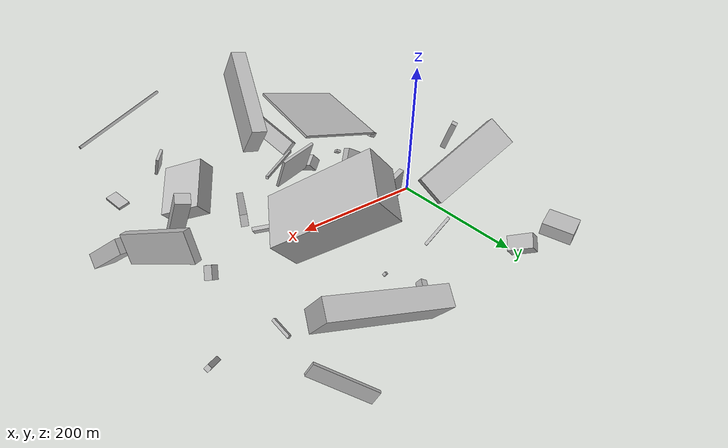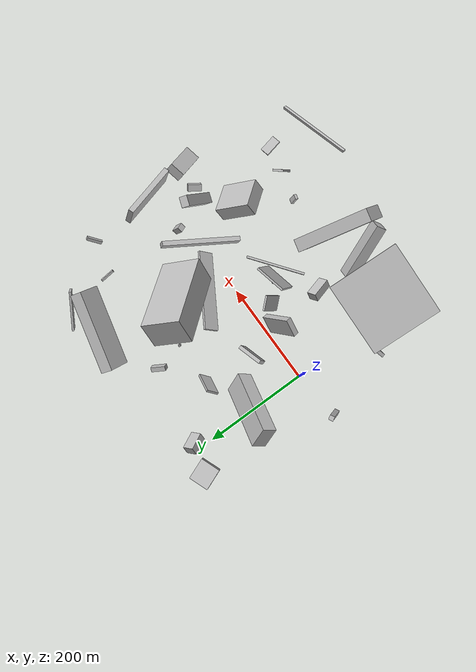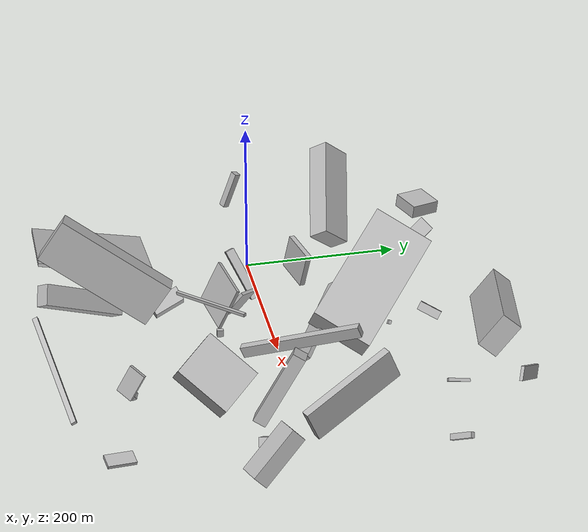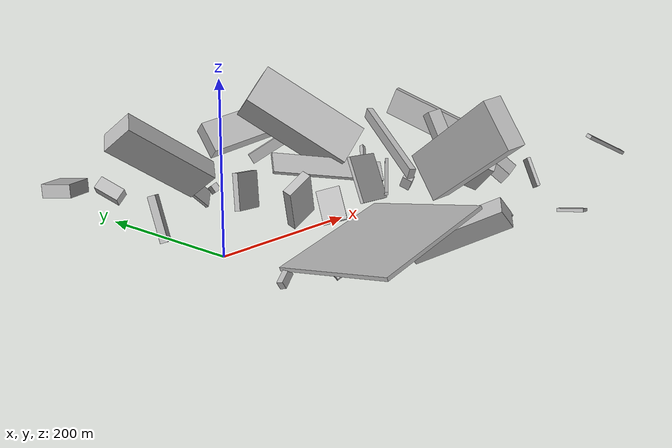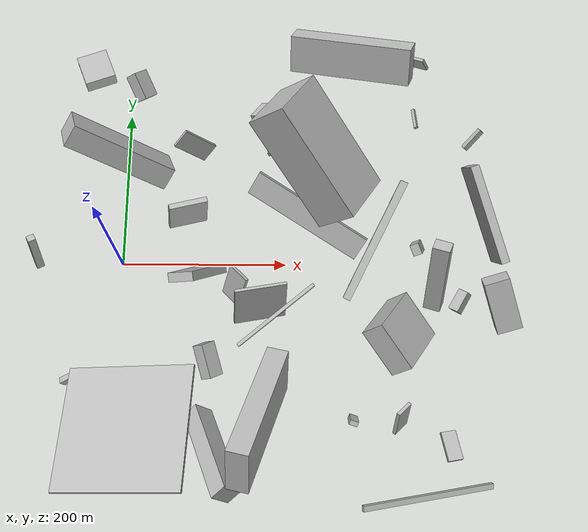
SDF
<sdf version="1.6">
 <world name="default">
  <scene>
   <sky><clouds><speed>12</speed></clouds></sky>
   <ambient>0.4 0.4 0.4 1</ambient>
   <background>0.7 0.7 0.7 1</background>
   <shadows>1</shadows>
  </scene>
  <gravity>0 0 -9.8066</gravity>
  <magnetic_field>6e-06 2.3e-05 -4.2e-05</magnetic_field>
  <physics default="0" name="default_physics" type="ode">
   <ode>
    <solver>
     <type>quick</type>
     <iters>10</iters>
     <sor>1.0</sor>
     <use_dynamic_moi_rescaling>0</use_dynamic_moi_rescaling>
    </solver>
    <constraints>
     <cfm>0</cfm>
     <erp>0.2</erp>
     <contact_max_correcting_vel>100</contact_max_correcting_vel>
     <contact_surface_layer>0.001</contact_surface_layer>
    </constraints>
   </ode>
   <max_step_size>0.004</max_step_size>
   <real_time_factor>1</real_time_factor>
   <real_time_update_rate>250</real_time_update_rate>
  </physics>
  <light name="sun" type="directional">
   <pose>0 0 10 0 0 0</pose>
   <diffuse>0.8 0.8 0.8 1</diffuse>
   <specular>0.2 0.2 0.2 1</specular>
   <attenuation>
    <range>1000</range>
    <constant>0.9</constant>
    <linear>0.01</linear>
    <quadratic>0.001</quadratic>
   </attenuation>
   <direction>-0.5 0.1 -0.9</direction>
  </light>
  <model name="building_1">
   <static>0</static>
   <pose>423.2713881716468 33.32273228064507 90.53057912368601 1.5155915611958493 -0.3946963581893086 1.9354822154716351</pose>
   <link name="link">
    <gravity>0</gravity>
    <pose>0 0 5.0 0 0 0</pose>
    <collision name="collision"><geometry><box><size>116 39 10</size></box></geometry></collision>
    <visual name="visual">
     <cast_shadows>0</cast_shadows>
     <geometry><box><size>116 39 10</size></box></geometry>
     <material>
      <script>
       <uri>model://HANNAS_wall/materials/scripts</uri>
       <uri>model://HANNAS_wall/materials/textures</uri>
       <name>vrc/HANNAS_wall</name>
      </script>
     </material>
    </visual>
   </link>
  </model>
  <model name="building_2">
   <static>0</static>
   <pose>-40.761398044383306 242.69810181229232 35.422317585426136 -0.0413130572088 -0.08508705152513815 -1.1952758532020122</pose>
   <link name="link">
    <gravity>0</gravity>
    <pose>0 0 8.5 0 0 0</pose>
    <collision name="collision"><geometry><box><size>41 38 17</size></box></geometry></collision>
    <visual name="visual">
     <cast_shadows>0</cast_shadows>
     <geometry><box><size>41 38 17</size></box></geometry>
     <material>
      <script>
       <uri>model://HANNAS_wall/materials/scripts</uri>
       <uri>model://HANNAS_wall/materials/textures</uri>
       <name>vrc/HANNAS_wall</name>
      </script>
     </material>
    </visual>
   </link>
  </model>
  <model name="building_3">
   <static>0</static>
   <pose>95.47522203526819 -19.718451440857795 51.18671006491607 2.021734808354601 -0.5368189484256792 -0.10825495840891942</pose>
   <link name="link">
    <gravity>0</gravity>
    <pose>0 0 5.5 0 0 0</pose>
    <collision name="collision"><geometry><box><size>35 68 11</size></box></geometry></collision>
    <visual name="visual">
     <cast_shadows>0</cast_shadows>
     <geometry><box><size>35 68 11</size></box></geometry>
     <material>
      <script>
       <uri>model://HANNAS_wall/materials/scripts</uri>
       <uri>model://HANNAS_wall/materials/textures</uri>
       <name>vrc/HANNAS_wall</name>
      </script>
     </material>
    </visual>
   </link>
  </model>
  <model name="building_4">
   <static>0</static>
   <pose>-91.1653254642485 -14.087869634490652 42.5407686330728 0.31982391063080085 -0.1558422196460266 -2.652239342547291</pose>
   <link name="link">
    <gravity>0</gravity>
    <pose>0 0 25.0 0 0 0</pose>
    <collision name="collision"><geometry><box><size>9 9 50</size></box></geometry></collision>
    <visual name="visual">
     <cast_shadows>0</cast_shadows>
     <geometry><box><size>9 9 50</size></box></geometry>
     <material>
      <script>
       <uri>model://HANNAS_wall/materials/scripts</uri>
       <uri>model://HANNAS_wall/materials/textures</uri>
       <name>vrc/HANNAS_wall</name>
      </script>
     </material>
    </visual>
   </link>
  </model>
  <model name="building_5">
   <static>0</static>
   <pose>125.31228491281178 -225.48058273440984 55.20330338639746 2.152263274358216 -0.471486570842105 -1.1852541359843436</pose>
   <link name="link">
    <gravity>0</gravity>
    <pose>0 0 10.5 0 0 0</pose>
    <collision name="collision"><geometry><box><size>113 26 21</size></box></geometry></collision>
    <visual name="visual">
     <cast_shadows>0</cast_shadows>
     <geometry><box><size>113 26 21</size></box></geometry>
     <material>
      <script>
       <uri>model://HANNAS_wall/materials/scripts</uri>
       <uri>model://HANNAS_wall/materials/textures</uri>
       <name>vrc/HANNAS_wall</name>
      </script>
     </material>
    </visual>
   </link>
  </model>
  <model name="building_6">
   <static>0</static>
   <pose>24.4350919595255 -152.62535661599145 11.268935544126002 -2.1417508333677975 -0.6334243813184268 1.6223262155216351</pose>
   <link name="link">
    <gravity>0</gravity>
    <pose>0 0 4.0 0 0 0</pose>
    <collision name="collision"><geometry><box><size>8 4 8</size></box></geometry></collision>
    <visual name="visual">
     <cast_shadows>0</cast_shadows>
     <geometry><box><size>8 4 8</size></box></geometry>
     <material>
      <script>
       <uri>model://HANNAS_wall/materials/scripts</uri>
       <uri>model://HANNAS_wall/materials/textures</uri>
       <name>vrc/HANNAS_wall</name>
      </script>
     </material>
    </visual>
   </link>
  </model>
  <model name="building_7">
   <static>0</static>
   <pose>24.989761963303152 -136.41494302926657 47.99060084512183 1.3850535838943 -0.23175146526953666 -0.007424381484065265</pose>
   <link name="link">
    <gravity>0</gravity>
    <pose>0 0 71.5 0 0 0</pose>
    <collision name="collision"><geometry><box><size>150 4 143</size></box></geometry></collision>
    <visual name="visual">
     <cast_shadows>0</cast_shadows>
     <geometry><box><size>150 4 143</size></box></geometry>
     <material>
      <script>
       <uri>model://HANNAS_wall/materials/scripts</uri>
       <uri>model://HANNAS_wall/materials/textures</uri>
       <name>vrc/HANNAS_wall</name>
      </script>
     </material>
    </visual>
   </link>
  </model>
  <model name="building_8">
   <static>0</static>
   <pose>452.7440452072369 -50.43465398322649 33.00736161515472 -0.2941380592307274 -0.6748517957386035 2.002844927292293</pose>
   <link name="link">
    <gravity>0</gravity>
    <pose>0 0 10.0 0 0 0</pose>
    <collision name="collision"><geometry><box><size>67 30 20</size></box></geometry></collision>
    <visual name="visual">
     <cast_shadows>0</cast_shadows>
     <geometry><box><size>67 30 20</size></box></geometry>
     <material>
      <script>
       <uri>model://HANNAS_wall/materials/scripts</uri>
       <uri>model://HANNAS_wall/materials/textures</uri>
       <name>vrc/HANNAS_wall</name>
      </script>
     </material>
    </visual>
   </link>
  </model>
  <model name="building_9">
   <static>0</static>
   <pose>169.3698148469108 -77.59307040349289 43.521042969222194 0.1404028505132665 0.4071581412728025 1.8292327960023271</pose>
   <link name="link">
    <gravity>0</gravity>
    <pose>0 0 28.0 0 0 0</pose>
    <collision name="collision"><geometry><box><size>4 60 56</size></box></geometry></collision>
    <visual name="visual">
     <cast_shadows>0</cast_shadows>
     <geometry><box><size>4 60 56</size></box></geometry>
     <material>
      <script>
       <uri>model://HANNAS_wall/materials/scripts</uri>
       <uri>model://HANNAS_wall/materials/textures</uri>
       <name>vrc/HANNAS_wall</name>
      </script>
     </material>
    </visual>
   </link>
  </model>
  <model name="building_10">
   <static>0</static>
   <pose>346.63349648539685 269.7137365384999 28.648661330461312 1.4409845826511285 -1.0278197319086366 2.6636154913074916</pose>
   <link name="link">
    <gravity>0</gravity>
    <pose>0 0 2.0 0 0 0</pose>
    <collision name="collision"><geometry><box><size>17 79 4</size></box></geometry></collision>
    <visual name="visual">
     <cast_shadows>0</cast_shadows>
     <geometry><box><size>17 79 4</size></box></geometry>
     <material>
      <script>
       <uri>model://HANNAS_wall/materials/scripts</uri>
       <uri>model://HANNAS_wall/materials/textures</uri>
       <name>vrc/HANNAS_wall</name>
      </script>
     </material>
    </visual>
   </link>
  </model>
  <model name="building_11">
   <static>0</static>
   <pose>269.90693433742655 -56.361739193574316 53.21327486972566 -1.200659336461007 0.07440403483669046 -0.44955892471506353</pose>
   <link name="link">
    <gravity>0</gravity>
    <pose>0 0 75.0 0 0 0</pose>
    <collision name="collision"><geometry><box><size>9 14 150</size></box></geometry></collision>
    <visual name="visual">
     <cast_shadows>0</cast_shadows>
     <geometry><box><size>9 14 150</size></box></geometry>
     <material>
      <script>
       <uri>model://HANNAS_wall/materials/scripts</uri>
       <uri>model://HANNAS_wall/materials/textures</uri>
       <name>vrc/HANNAS_wall</name>
      </script>
     </material>
    </visual>
   </link>
  </model>
  <model name="building_12">
   <static>0</static>
   <pose>80.19095574726798 45.75819749310187 28.777183331631832 0.14019529558732713 0.13687536432273378 1.874458817335922</pose>
   <link name="link">
    <gravity>0</gravity>
    <pose>0 0 22.5 0 0 0</pose>
    <collision name="collision"><geometry><box><size>7 46 45</size></box></geometry></collision>
    <visual name="visual">
     <cast_shadows>0</cast_shadows>
     <geometry><box><size>7 46 45</size></box></geometry>
     <material>
      <script>
       <uri>model://HANNAS_wall/materials/scripts</uri>
       <uri>model://HANNAS_wall/materials/textures</uri>
       <name>vrc/HANNAS_wall</name>
      </script>
     </material>
    </visual>
   </link>
  </model>
  <model name="building_13">
   <static>0</static>
   <pose>438.07227108715 162.1336911180379 15.410472844189712 0.6171526519532509 -0.5475507977858816 -1.1724277737194895</pose>
   <link name="link">
    <gravity>0</gravity>
    <pose>0 0 3.5 0 0 0</pose>
    <collision name="collision"><geometry><box><size>6 30 7</size></box></geometry></collision>
    <visual name="visual">
     <cast_shadows>0</cast_shadows>
     <geometry><box><size>6 30 7</size></box></geometry>
     <material>
      <script>
       <uri>model://HANNAS_wall/materials/scripts</uri>
       <uri>model://HANNAS_wall/materials/textures</uri>
       <name>vrc/HANNAS_wall</name>
      </script>
     </material>
    </visual>
   </link>
  </model>
  <model name="building_14">
   <static>0</static>
   <pose>402.7859935189193 -47.01652078254979 18.823232627449514 1.0359968717042374 -0.23245048332398546 1.0507251530638333</pose>
   <link name="link">
    <gravity>0</gravity>
    <pose>0 0 6.5 0 0 0</pose>
    <collision name="collision"><geometry><box><size>26 11 13</size></box></geometry></collision>
    <visual name="visual">
     <cast_shadows>0</cast_shadows>
     <geometry><box><size>26 11 13</size></box></geometry>
     <material>
      <script>
       <uri>model://HANNAS_wall/materials/scripts</uri>
       <uri>model://HANNAS_wall/materials/textures</uri>
       <name>vrc/HANNAS_wall</name>
      </script>
     </material>
    </visual>
   </link>
  </model>
  <model name="building_15">
   <static>0</static>
   <pose>284.12047781062336 257.2570741529559 66.36054320293846 0.9371433964430669 -0.19635832085730862 -0.24783213118638123</pose>
   <link name="link">
    <gravity>0</gravity>
    <pose>0 0 13.0 0 0 0</pose>
    <collision name="collision"><geometry><box><size>150 46 26</size></box></geometry></collision>
    <visual name="visual">
     <cast_shadows>0</cast_shadows>
     <geometry><box><size>150 46 26</size></box></geometry>
     <material>
      <script>
       <uri>model://HANNAS_wall/materials/scripts</uri>
       <uri>model://HANNAS_wall/materials/textures</uri>
       <name>vrc/HANNAS_wall</name>
      </script>
     </material>
    </visual>
   </link>
  </model>
  <model name="building_16">
   <static>0</static>
   <pose>86.96887241723182 143.59504309230343 34.3522155790083 2.2187620886805095 -0.7433297014753587 3.0057701449027143</pose>
   <link name="link">
    <gravity>0</gravity>
    <pose>0 0 2.0 0 0 0</pose>
    <collision name="collision"><geometry><box><size>47 25 4</size></box></geometry></collision>
    <visual name="visual">
     <cast_shadows>0</cast_shadows>
     <geometry><box><size>47 25 4</size></box></geometry>
     <material>
      <script>
       <uri>model://HANNAS_wall/materials/scripts</uri>
       <uri>model://HANNAS_wall/materials/textures</uri>
       <name>vrc/HANNAS_wall</name>
      </script>
     </material>
    </visual>
   </link>
  </model>
  <model name="building_17">
   <static>0</static>
   <pose>9.1244607605892 229.1498226500965 25.315977744848695 0.6724420040564778 -0.4546887348247923 2.0378873580728794</pose>
   <link name="link">
    <gravity>0</gravity>
    <pose>0 0 8.5 0 0 0</pose>
    <collision name="collision"><geometry><box><size>34 21 17</size></box></geometry></collision>
    <visual name="visual">
     <cast_shadows>0</cast_shadows>
     <geometry><box><size>34 21 17</size></box></geometry>
     <material>
      <script>
       <uri>model://HANNAS_wall/materials/scripts</uri>
       <uri>model://HANNAS_wall/materials/textures</uri>
       <name>vrc/HANNAS_wall</name>
      </script>
     </material>
    </visual>
   </link>
  </model>
  <model name="building_18">
   <static>0</static>
   <pose>170.5240322281091 -218.5983891946006 99.27903430971747 0.5907702949200591 0.13282263310020465 2.914680023988345</pose>
   <link name="link">
    <gravity>0</gravity>
    <pose>0 0 28.5 0 0 0</pose>
    <collision name="collision"><geometry><box><size>24 150 57</size></box></geometry></collision>
    <visual name="visual">
     <cast_shadows>0</cast_shadows>
     <geometry><box><size>24 150 57</size></box></geometry>
     <material>
      <script>
       <uri>model://HANNAS_wall/materials/scripts</uri>
       <uri>model://HANNAS_wall/materials/textures</uri>
       <name>vrc/HANNAS_wall</name>
      </script>
     </material>
    </visual>
   </link>
  </model>
  <model name="building_19">
   <static>0</static>
   <pose>141.30046515560235 -35.29733074025894 34.86913855357601 1.0061755613139243 -0.2559752086316236 -0.8227686413642422</pose>
   <link name="link">
    <gravity>0</gravity>
    <pose>0 0 2.0 0 0 0</pose>
    <collision name="collision"><geometry><box><size>29 42 4</size></box></geometry></collision>
    <visual name="visual">
     <cast_shadows>0</cast_shadows>
     <geometry><box><size>29 42 4</size></box></geometry>
     <material>
      <script>
       <uri>model://HANNAS_wall/materials/scripts</uri>
       <uri>model://HANNAS_wall/materials/textures</uri>
       <name>vrc/HANNAS_wall</name>
      </script>
     </material>
    </visual>
   </link>
  </model>
  <model name="building_20">
   <static>0</static>
   <pose>114.75462884082259 -142.3541245404209 21.374953476631617 -1.1698624425294177 0.6315303236194101 0.5240280972142696</pose>
   <link name="link">
    <gravity>0</gravity>
    <pose>0 0 20.0 0 0 0</pose>
    <collision name="collision"><geometry><box><size>19 17 40</size></box></geometry></collision>
    <visual name="visual">
     <cast_shadows>0</cast_shadows>
     <geometry><box><size>19 17 40</size></box></geometry>
     <material>
      <script>
       <uri>model://HANNAS_wall/materials/scripts</uri>
       <uri>model://HANNAS_wall/materials/textures</uri>
       <name>vrc/HANNAS_wall</name>
      </script>
     </material>
    </visual>
   </link>
  </model>
  <model name="building_21">
   <static>0</static>
   <pose>145.67683012806765 -114.30509101945967 63.681378359749495 0.1290780289779337 1.4488421192219672 0.8012442855885182</pose>
   <link name="link">
    <gravity>0</gravity>
    <pose>0 0 55.0 0 0 0</pose>
    <collision name="collision"><geometry><box><size>4 4 110</size></box></geometry></collision>
    <visual name="visual">
     <cast_shadows>0</cast_shadows>
     <geometry><box><size>4 4 110</size></box></geometry>
     <material>
      <script>
       <uri>model://HANNAS_wall/materials/scripts</uri>
       <uri>model://HANNAS_wall/materials/textures</uri>
       <name>vrc/HANNAS_wall</name>
      </script>
     </material>
    </visual>
   </link>
  </model>
  <model name="building_22">
   <static>0</static>
   <pose>216.28075393325878 75.61491879327775 120.94844571781721 2.0935587154052784 -0.5789936120012968 2.2851497868139443</pose>
   <link name="link">
    <gravity>0</gravity>
    <pose>0 0 37.5 0 0 0</pose>
    <collision name="collision"><geometry><box><size>150 54 75</size></box></geometry></collision>
    <visual name="visual">
     <cast_shadows>0</cast_shadows>
     <geometry><box><size>150 54 75</size></box></geometry>
     <material>
      <script>
       <uri>model://HANNAS_wall/materials/scripts</uri>
       <uri>model://HANNAS_wall/materials/textures</uri>
       <name>vrc/HANNAS_wall</name>
      </script>
     </material>
    </visual>
   </link>
  </model>
  <model name="building_23">
   <static>0</static>
   <pose>218.07139576661487 37.23891573620338 43.07204327886791 -0.23195736460244407 -0.832989318678144 -1.936913882397864</pose>
   <link name="link">
    <gravity>0</gravity>
    <pose>0 0 15.0 0 0 0</pose>
    <collision name="collision"><geometry><box><size>5 150 30</size></box></geometry></collision>
    <visual name="visual">
     <cast_shadows>0</cast_shadows>
     <geometry><box><size>5 150 30</size></box></geometry>
     <material>
      <script>
       <uri>model://HANNAS_wall/materials/scripts</uri>
       <uri>model://HANNAS_wall/materials/textures</uri>
       <name>vrc/HANNAS_wall</name>
      </script>
     </material>
    </visual>
   </link>
  </model>
  <model name="building_24">
   <static>0</static>
   <pose>-3.6491793653954936 99.72129653507974 89.6604088820275 0.85938337426042 -0.5879641136136534 2.927459340775998</pose>
   <link name="link">
    <gravity>0</gravity>
    <pose>0 0 13.5 0 0 0</pose>
    <collision name="collision"><geometry><box><size>129 43 27</size></box></geometry></collision>
    <visual name="visual">
     <cast_shadows>0</cast_shadows>
     <geometry><box><size>129 43 27</size></box></geometry>
     <material>
      <script>
       <uri>model://HANNAS_wall/materials/scripts</uri>
       <uri>model://HANNAS_wall/materials/textures</uri>
       <name>vrc/HANNAS_wall</name>
      </script>
     </material>
    </visual>
   </link>
  </model>
  <model name="building_25">
   <static>0</static>
   <pose>318.45326874637726 -101.47277454184052 54.04443445921241 0.6492150517103357 -0.3970209470759248 2.2422845540931498</pose>
   <link name="link">
    <gravity>0</gravity>
    <pose>0 0 14.5 0 0 0</pose>
    <collision name="collision"><geometry><box><size>60 71 29</size></box></geometry></collision>
    <visual name="visual">
     <cast_shadows>0</cast_shadows>
     <geometry><box><size>60 71 29</size></box></geometry>
     <material>
      <script>
       <uri>model://HANNAS_wall/materials/scripts</uri>
       <uri>model://HANNAS_wall/materials/textures</uri>
       <name>vrc/HANNAS_wall</name>
      </script>
     </material>
    </visual>
   </link>
  </model>
  <model name="building_26">
   <static>0</static>
   <pose>416.62285192591634 -267.4727873681737 88.52570087010403 1.2253577712266877 0.4312790074943322 -1.537129922716475</pose>
   <link name="link">
    <gravity>0</gravity>
    <pose>0 0 75.0 0 0 0</pose>
    <collision name="collision"><geometry><box><size>6 4 150</size></box></geometry></collision>
    <visual name="visual">
     <cast_shadows>0</cast_shadows>
     <geometry><box><size>6 4 150</size></box></geometry>
     <material>
      <script>
       <uri>model://HANNAS_wall/materials/scripts</uri>
       <uri>model://HANNAS_wall/materials/textures</uri>
       <name>vrc/HANNAS_wall</name>
      </script>
     </material>
    </visual>
   </link>
  </model>
  <model name="building_27">
   <static>0</static>
   <pose>159.3741961187523 191.3253566176992 13.653679775684527 -1.981943935212341 -0.5006993516081764 -0.3466210124057291</pose>
   <link name="link">
    <gravity>0</gravity>
    <pose>0 0 14.5 0 0 0</pose>
    <collision name="collision"><geometry><box><size>9 11 29</size></box></geometry></collision>
    <visual name="visual">
     <cast_shadows>0</cast_shadows>
     <geometry><box><size>9 11 29</size></box></geometry>
     <material>
      <script>
       <uri>model://HANNAS_wall/materials/scripts</uri>
       <uri>model://HANNAS_wall/materials/textures</uri>
       <name>vrc/HANNAS_wall</name>
      </script>
     </material>
    </visual>
   </link>
  </model>
  <model name="building_28">
   <static>0</static>
   <pose>-48.957816268773605 -146.19985530543326 20.573104387995723 -0.5068075225713388 0.2207828850478271 1.7998054230994351</pose>
   <link name="link">
    <gravity>0</gravity>
    <pose>0 0 4.5 0 0 0</pose>
    <collision name="collision"><geometry><box><size>7 19 9</size></box></geometry></collision>
    <visual name="visual">
     <cast_shadows>0</cast_shadows>
     <geometry><box><size>7 19 9</size></box></geometry>
     <material>
      <script>
       <uri>model://HANNAS_wall/materials/scripts</uri>
       <uri>model://HANNAS_wall/materials/textures</uri>
       <name>vrc/HANNAS_wall</name>
      </script>
     </material>
    </visual>
   </link>
  </model>
  <model name="building_29">
   <static>0</static>
   <pose>357.87475224188773 25.330414636672945 15.227441420139048 2.0345433246951288 -0.45144075143624984 0.22369675140791664</pose>
   <link name="link">
    <gravity>0</gravity>
    <pose>0 0 7.0 0 0 0</pose>
    <collision name="collision"><geometry><box><size>11 19 14</size></box></geometry></collision>
    <visual name="visual">
     <cast_shadows>0</cast_shadows>
     <geometry><box><size>11 19 14</size></box></geometry>
     <material>
      <script>
       <uri>model://HANNAS_wall/materials/scripts</uri>
       <uri>model://HANNAS_wall/materials/textures</uri>
       <name>vrc/HANNAS_wall</name>
      </script>
     </material>
    </visual>
   </link>
  </model>
  <model name="building_30">
   <static>0</static>
   <pose>326.25012961135167 -203.65681164267912 51.38555746214563 0.3074857823527431 -0.3789926704779489 -2.3751133539477123</pose>
   <link name="link">
    <gravity>0</gravity>
    <pose>0 0 18.0 0 0 0</pose>
    <collision name="collision"><geometry><box><size>21 4 36</size></box></geometry></collision>
    <visual name="visual">
     <cast_shadows>0</cast_shadows>
     <geometry><box><size>21 4 36</size></box></geometry>
     <material>
      <script>
       <uri>model://HANNAS_wall/materials/scripts</uri>
       <uri>model://HANNAS_wall/materials/textures</uri>
       <name>vrc/HANNAS_wall</name>
      </script>
     </material>
    </visual>
   </link>
  </model>
  <model name="building_31">
   <static>0</static>
   <pose>171.92530591091855 -70.85393081510853 15.151726621690585 1.5646190333317074 1.5016959465649755 3.0702227047562776</pose>
   <link name="link">
    <gravity>0</gravity>
    <pose>0 0 4.0 0 0 0</pose>
    <collision name="collision"><geometry><box><size>10 4 8</size></box></geometry></collision>
    <visual name="visual">
     <cast_shadows>0</cast_shadows>
     <geometry><box><size>10 4 8</size></box></geometry>
     <material>
      <script>
       <uri>model://HANNAS_wall/materials/scripts</uri>
       <uri>model://HANNAS_wall/materials/textures</uri>
       <name>vrc/HANNAS_wall</name>
      </script>
     </material>
    </visual>
   </link>
  </model>
  <model name="building_32">
   <static>0</static>
   <pose>276.7567410582128 -193.5646460414925 17.315842169471395 -0.3480956420286512 -1.0372288109296195 -1.561524940116887</pose>
   <link name="link">
    <gravity>0</gravity>
    <pose>0 0 3.0 0 0 0</pose>
    <collision name="collision"><geometry><box><size>18 10 6</size></box></geometry></collision>
    <visual name="visual">
     <cast_shadows>0</cast_shadows>
     <geometry><box><size>18 10 6</size></box></geometry>
     <material>
      <script>
       <uri>model://HANNAS_wall/materials/scripts</uri>
       <uri>model://HANNAS_wall/materials/textures</uri>
       <name>vrc/HANNAS_wall</name>
      </script>
     </material>
    </visual>
   </link>
  </model>
  <model name="building_33">
   <static>0</static>
   <pose>180.10038870156254 146.4042597611373 4.2485745742225305 -0.5133464250766125 0.43190813947786894 1.5410008975018568</pose>
   <link name="link">
    <gravity>0</gravity>
    <pose>0 0 2.5 0 0 0</pose>
    <collision name="collision"><geometry><box><size>4 4 5</size></box></geometry></collision>
    <visual name="visual">
     <cast_shadows>0</cast_shadows>
     <geometry><box><size>4 4 5</size></box></geometry>
     <material>
      <script>
       <uri>model://HANNAS_wall/materials/scripts</uri>
       <uri>model://HANNAS_wall/materials/textures</uri>
       <name>vrc/HANNAS_wall</name>
      </script>
     </material>
    </visual>
   </link>
  </model>
  <model name="building_34">
   <static>0</static>
   <pose>376.7248760628904 -27.17667790507641 66.8674963207329 -0.3859536595771328 -1.0705452802955724 1.570755104706076</pose>
   <link name="link">
    <gravity>0</gravity>
    <pose>0 0 8.0 0 0 0</pose>
    <collision name="collision"><geometry><box><size>96 20 16</size></box></geometry></collision>
    <visual name="visual">
     <cast_shadows>0</cast_shadows>
     <geometry><box><size>96 20 16</size></box></geometry>
     <material>
      <script>
       <uri>model://HANNAS_wall/materials/scripts</uri>
       <uri>model://HANNAS_wall/materials/textures</uri>
       <name>vrc/HANNAS_wall</name>
      </script>
     </material>
    </visual>
   </link>
  </model>
  <model name="building_35">
   <static>0</static>
   <pose>381.77276972750883 -220.27107939865073 12.518100224996408 -1.7530687961513982 -0.12319848548034266 -1.3698821486044417</pose>
   <link name="link">
    <gravity>0</gravity>
    <pose>0 0 9.0 0 0 0</pose>
    <collision name="collision"><geometry><box><size>34 4 18</size></box></geometry></collision>
    <visual name="visual">
     <cast_shadows>0</cast_shadows>
     <geometry><box><size>34 4 18</size></box></geometry>
     <material>
      <script>
       <uri>model://HANNAS_wall/materials/scripts</uri>
       <uri>model://HANNAS_wall/materials/textures</uri>
       <name>vrc/HANNAS_wall</name>
      </script>
     </material>
    </visual>
   </link>
  </model>
  <model name="building_36">
   <static>0</static>
   <pose>361.11160596754775 180.19714573242916 38.14883820581502 0.25067100883922305 0.6392363990928961 -2.9233003302519287</pose>
   <link name="link">
    <gravity>0</gravity>
    <pose>0 0 2.0 0 0 0</pose>
    <collision name="collision"><geometry><box><size>4 28 4</size></box></geometry></collision>
    <visual name="visual">
     <cast_shadows>0</cast_shadows>
     <geometry><box><size>4 28 4</size></box></geometry>
     <material>
      <script>
       <uri>model://HANNAS_wall/materials/scripts</uri>
       <uri>model://HANNAS_wall/materials/textures</uri>
       <name>vrc/HANNAS_wall</name>
      </script>
     </material>
    </visual>
   </link>
  </model>
 </world>
</sdf>
